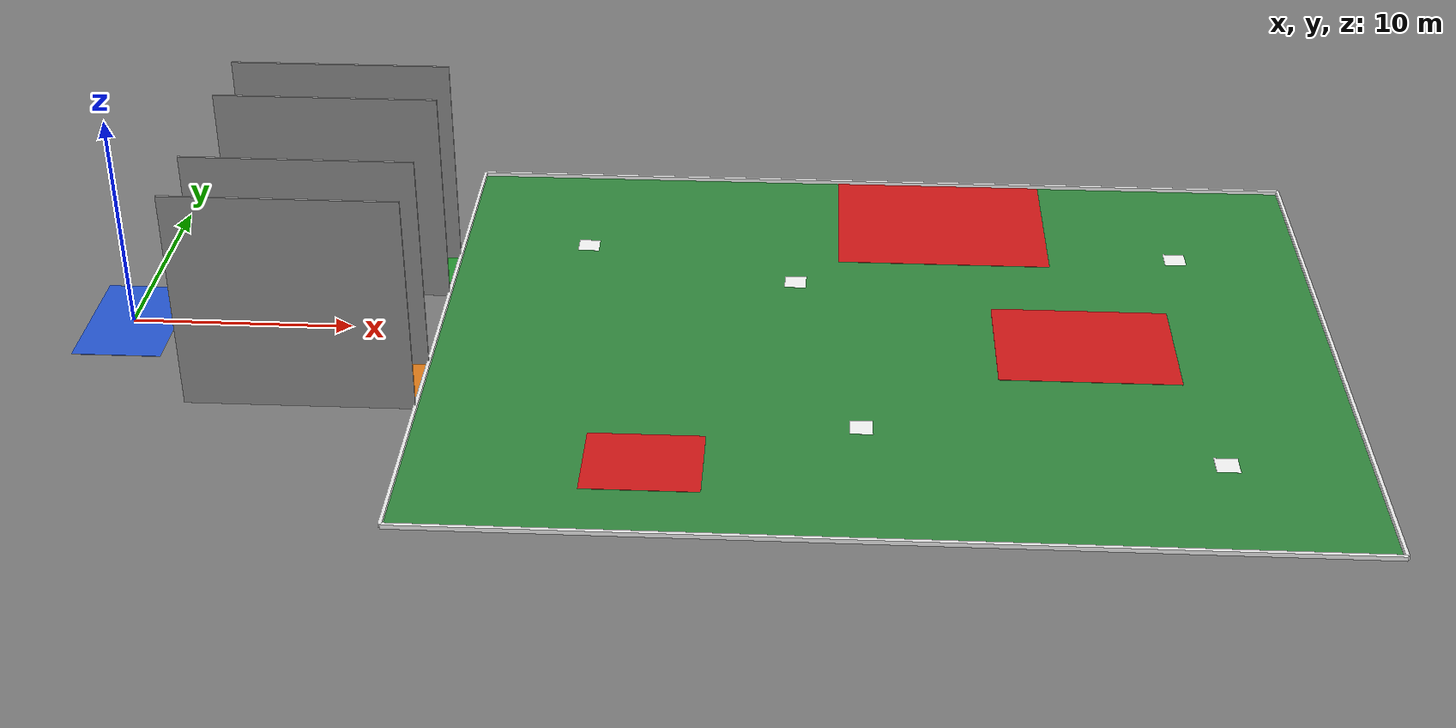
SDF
<?xml version="1.0" ?>
<sdf version="1.9">
  <world name="mission2_arena">
    <physics name="4ms" type="ignored">
      <max_step_size>0.004</max_step_size>
      <real_time_factor>1.0</real_time_factor>
    </physics>
    <plugin filename="gz-sim-physics-system" name="gz::sim::systems::Physics"/>
    <plugin filename="gz-sim-user-commands-system" name="gz::sim::systems::UserCommands"/>
    <plugin filename="gz-sim-scene-broadcaster-system" name="gz::sim::systems::SceneBroadcaster"/>
    <plugin filename="gz-sim-sensors-system" name="gz::sim::systems::Sensors">
      <render_engine>ogre2</render_engine>
    </plugin>

    <gui fullscreen="0">
      <plugin filename="MinimalScene" name="3D View">
        <gz-gui><title>3D View</title>
          <property type="bool" key="showTitleBar">false</property>
          <property type="string" key="state">docked</property>
        </gz-gui>
        <engine>ogre2</engine><scene>scene</scene>
        <ambient_light>0.5 0.5 0.5</ambient_light>
        <background_color>0.75 0.82 0.9</background_color>
        <camera_pose>25 -48 34 0 0.62 1.5708</camera_pose>
      </plugin>
      <plugin filename="GzSceneManager" name="Scene Manager"/>
      <plugin filename="InteractiveViewControl" name="Interactive view control"/>
      <plugin filename="CameraTracking" name="Camera Tracking"/>
      <plugin filename="MarkerManager" name="Marker manager"/>
      <plugin filename="SelectEntities" name="Select Entities"/>
      <plugin filename="Spawn" name="Spawn Entities"/>
      <plugin filename="EntityContextMenuPlugin" name="Entity context menu"/>
      <plugin filename="WorldControl" name="World control">
        <gz-gui>
          <property type="bool" key="showTitleBar">false</property>
          <property type="bool" key="resizable">false</property>
          <property type="double" key="height">72</property>
          <property type="double" key="z">1</property>
          <property type="string" key="state">floating</property>
          <anchors target="3D View"><line own="left" target="left"/><line own="bottom" target="bottom"/></anchors>
        </gz-gui>
        <play_pause>true</play_pause><step>true</step><start_paused>true</start_paused>
      </plugin>
      <plugin filename="WorldStats" name="World stats">
        <gz-gui>
          <property type="bool" key="showTitleBar">false</property>
          <property type="bool" key="resizable">false</property>
          <property type="double" key="height">110</property><property type="double" key="width">290</property>
          <property type="string" key="state">floating</property>
          <anchors target="3D View"><line own="right" target="right"/><line own="bottom" target="bottom"/></anchors>
        </gz-gui>
        <sim_time>true</sim_time><real_time>true</real_time><real_time_factor>true</real_time_factor>
      </plugin>
      <plugin filename="TransformControl" name="Transform control"/>
      <plugin filename="Shapes" name="Shapes"/>
      <plugin filename="ComponentInspector" name="Component inspector"/>
      <plugin filename="EntityTree" name="Entity tree"/>
    </gui>

    <light name="sun" type="directional">
      <cast_shadows>true</cast_shadows>
      <pose>0 0 10 0 0 0</pose>
      <diffuse>0.9 0.9 0.9 1</diffuse>
      <specular>0.25 0.25 0.25 1</specular>
      <direction>-0.4 0.3 -0.9</direction>
    </light>

    <model name="ground_plane">
      <static>true</static>
      <link name="link">
        <collision name="collision">
          <geometry><plane><normal>0 0 1</normal><size>200 200</size></plane></geometry>
        </collision>
        <visual name="visual">
          <geometry><plane><normal>0 0 1</normal><size>200 200</size></plane></geometry>
          <material>
            <ambient>0.4 0.4 0.4 1</ambient>
            <diffuse>0.5 0.5 0.5 1</diffuse>
          </material>
        </visual>
      </link>
    </model>

    <model name="takeoff_landing_zone">
      <static>true</static>
      <pose>0 0 0.02 0 0 0</pose>
      <link name="link">
        <visual name="v">
          <geometry><box><size>4 6 0.02</size></box></geometry>
          <material>
            <ambient>0.15 0.35 0.85 1</ambient>
            <diffuse>0.15 0.35 0.85 1</diffuse>
            <specular>0.1 0.1 0.1 1</specular>
          </material>
        </visual>
      </link>
    </model>

    <model name="lane_forward_green">
      <static>true</static>
      <pose>9 4.75 0.011 0 0 0</pose>
      <link name="link">
        <visual name="v">
          <geometry><box><size>10 3.5 0.02</size></box></geometry>
          <material>
            <ambient>0.15 0.6 0.2 1</ambient>
            <diffuse>0.15 0.6 0.2 1</diffuse>
            <specular>0.1 0.1 0.1 1</specular>
          </material>
        </visual>
      </link>
    </model>

    <model name="lane_return_orange">
      <static>true</static>
      <pose>9 -4.75 0.011 0 0 0</pose>
      <link name="link">
        <visual name="v">
          <geometry><box><size>10 3.5 0.02</size></box></geometry>
          <material>
            <ambient>0.9 0.5 0.1 1</ambient>
            <diffuse>0.9 0.5 0.1 1</diffuse>
            <specular>0.1 0.1 0.1 1</specular>
          </material>
        </visual>
      </link>
    </model>

    <model name="forward_outer_wall">
      <static>true</static>
      <pose>9 6.5 5.0 0 0 0</pose>
      <link name="link">
        <collision name="c">
          <geometry><box><size>10 0.1 10.0</size></box></geometry>
        </collision>
        <visual name="v">
          <geometry><box><size>10 0.1 10.0</size></box></geometry>
          <material>
            <ambient>0.55 0.55 0.55 1</ambient>
            <diffuse>0.55 0.55 0.55 1</diffuse>
          </material>
        </visual>
      </link>
    </model>

    <model name="forward_inner_wall">
      <static>true</static>
      <pose>9 3.0 5.0 0 0 0</pose>
      <link name="link">
        <collision name="c">
          <geometry><box><size>10 0.1 10.0</size></box></geometry>
        </collision>
        <visual name="v">
          <geometry><box><size>10 0.1 10.0</size></box></geometry>
          <material>
            <ambient>0.55 0.55 0.55 1</ambient>
            <diffuse>0.55 0.55 0.55 1</diffuse>
          </material>
        </visual>
      </link>
    </model>

    <model name="return_inner_wall">
      <static>true</static>
      <pose>9 -3.0 5.0 0 0 0</pose>
      <link name="link">
        <collision name="c">
          <geometry><box><size>10 0.1 10.0</size></box></geometry>
        </collision>
        <visual name="v">
          <geometry><box><size>10 0.1 10.0</size></box></geometry>
          <material>
            <ambient>0.55 0.55 0.55 1</ambient>
            <diffuse>0.55 0.55 0.55 1</diffuse>
          </material>
        </visual>
      </link>
    </model>

    <model name="return_outer_wall">
      <static>true</static>
      <pose>9 -6.5 5.0 0 0 0</pose>
      <link name="link">
        <collision name="c">
          <geometry><box><size>10 0.1 10.0</size></box></geometry>
        </collision>
        <visual name="v">
          <geometry><box><size>10 0.1 10.0</size></box></geometry>
          <material>
            <ambient>0.55 0.55 0.55 1</ambient>
            <diffuse>0.55 0.55 0.55 1</diffuse>
          </material>
        </visual>
      </link>
    </model>

    <model name="obstacle_1">
      <static>true</static>
      <pose>7.0 -4.0 1.0 0 0 0</pose>
      <link name="link">
        <collision name="c">
          <geometry><box><size>0.3 0.3 2.0</size></box></geometry>
        </collision>
        <visual name="v">
          <geometry><box><size>0.3 0.3 2.0</size></box></geometry>
          <material>
            <ambient>0.05 0.05 0.05 1</ambient>
            <diffuse>0.05 0.05 0.05 1</diffuse>
          </material>
        </visual>
      </link>
    </model>

    <model name="obstacle_2">
      <static>true</static>
      <pose>9.5 -5.8 1.0 0 0 0</pose>
      <link name="link">
        <collision name="c">
          <geometry><box><size>0.3 0.3 2.0</size></box></geometry>
        </collision>
        <visual name="v">
          <geometry><box><size>0.3 0.3 2.0</size></box></geometry>
          <material>
            <ambient>0.05 0.05 0.05 1</ambient>
            <diffuse>0.05 0.05 0.05 1</diffuse>
          </material>
        </visual>
      </link>
    </model>

    <model name="obstacle_3">
      <static>true</static>
      <pose>11.5 -4.8 1.25 0 0 0</pose>
      <link name="link">
        <collision name="c">
          <geometry><box><size>0.4 0.4 2.5</size></box></geometry>
        </collision>
        <visual name="v">
          <geometry><box><size>0.4 0.4 2.5</size></box></geometry>
          <material>
            <ambient>0.05 0.05 0.05 1</ambient>
            <diffuse>0.05 0.05 0.05 1</diffuse>
          </material>
        </visual>
      </link>
    </model>

    <model name="arena_floor">
      <static>true</static>
      <pose>34 0 0.008 0 0 0</pose>
      <link name="link">
        <visual name="v">
          <geometry><box><size>40 30 0.01</size></box></geometry>
          <material>
            <ambient>0.2 0.55 0.25 1</ambient>
            <diffuse>0.2 0.55 0.25 1</diffuse>
            <specular>0.1 0.1 0.1 1</specular>
          </material>
        </visual>
      </link>
    </model>

    <model name="arena_bnd_w">
      <static>true</static>
      <pose>14 0 0.1 0 0 0</pose>
      <link name="link">
        <visual name="v">
          <geometry><box><size>0.15 30 0.2</size></box></geometry>
          <material>
            <ambient>0.95 0.95 0.95 1</ambient>
            <diffuse>0.95 0.95 0.95 1</diffuse>
            <specular>0.1 0.1 0.1 1</specular>
          </material>
        </visual>
      </link>
    </model>

    <model name="arena_bnd_e">
      <static>true</static>
      <pose>54 0 0.1 0 0 0</pose>
      <link name="link">
        <visual name="v">
          <geometry><box><size>0.15 30 0.2</size></box></geometry>
          <material>
            <ambient>0.95 0.95 0.95 1</ambient>
            <diffuse>0.95 0.95 0.95 1</diffuse>
            <specular>0.1 0.1 0.1 1</specular>
          </material>
        </visual>
      </link>
    </model>

    <model name="arena_bnd_n">
      <static>true</static>
      <pose>34 15 0.1 0 0 0</pose>
      <link name="link">
        <visual name="v">
          <geometry><box><size>40 0.15 0.2</size></box></geometry>
          <material>
            <ambient>0.95 0.95 0.95 1</ambient>
            <diffuse>0.95 0.95 0.95 1</diffuse>
            <specular>0.1 0.1 0.1 1</specular>
          </material>
        </visual>
      </link>
    </model>

    <model name="arena_bnd_s">
      <static>true</static>
      <pose>34 -15 0.1 0 0 0</pose>
      <link name="link">
        <visual name="v">
          <geometry><box><size>40 0.15 0.2</size></box></geometry>
          <material>
            <ambient>0.95 0.95 0.95 1</ambient>
            <diffuse>0.95 0.95 0.95 1</diffuse>
            <specular>0.1 0.1 0.1 1</specular>
          </material>
        </visual>
      </link>
    </model>

    <model name="red_zone_main">
      <static>true</static>
      <pose>43 0 0.02 0 0 0</pose>
      <link name="link">
        <visual name="v">
          <geometry><box><size>8 6 0.02</size></box></geometry>
          <material>
            <ambient>0.85 0.1 0.1 1</ambient>
            <diffuse>0.85 0.1 0.1 1</diffuse>
            <specular>0.1 0.1 0.1 1</specular>
          </material>
        </visual>
      </link>
    </model>

    <model name="red_zone_small">
      <static>true</static>
      <pose>24 -10 0.02 0 0 0</pose>
      <link name="link">
        <visual name="v">
          <geometry><box><size>5 4 0.02</size></box></geometry>
          <material>
            <ambient>0.85 0.1 0.1 1</ambient>
            <diffuse>0.85 0.1 0.1 1</diffuse>
            <specular>0.1 0.1 0.1 1</specular>
          </material>
        </visual>
      </link>
    </model>

    <model name="red_zone_large">
      <static>true</static>
      <pose>37 11 0.02 0 0 0</pose>
      <link name="link">
        <visual name="v">
          <geometry><box><size>10 8 0.02</size></box></geometry>
          <material>
            <ambient>0.85 0.1 0.1 1</ambient>
            <diffuse>0.85 0.1 0.1 1</diffuse>
            <specular>0.1 0.1 0.1 1</specular>
          </material>
        </visual>
      </link>
    </model>

    <model name="qr_reference">
      <static>true</static>
      <pose>2.5 0 0.001 0 0 0</pose>
      <link name="link">
        <visual name="visual">
          <cast_shadows>false</cast_shadows>
          <geometry><box><size>1.0 1.0 0.002</size></box></geometry>
          <material>
            <ambient>1 1 1 1</ambient>
            <diffuse>1 1 1 1</diffuse>
            <specular>0 0 0 1</specular>
            <pbr>
              <metal>
                <albedo_map>/home/jaya9899/ros2_ws/src/skyscan_arena/materials/textures/qr_ref_target_A.png</albedo_map>
                <metalness>0</metalness>
                <roughness>1</roughness>
              </metal>
            </pbr>
          </material>
        </visual>
      </link>
    </model>

    <model name="qr_target_A">
      <static>true</static>
      <pose>30 5 0.016 0 0 0</pose>
      <link name="link">
        <visual name="visual">
          <cast_shadows>false</cast_shadows>
          <geometry><box><size>1.0 1.0 0.002</size></box></geometry>
          <material>
            <ambient>1 1 1 1</ambient>
            <diffuse>1 1 1 1</diffuse>
            <specular>0 0 0 1</specular>
            <pbr>
              <metal>
                <albedo_map>/home/jaya9899/ros2_ws/src/skyscan_arena/materials/textures/qr_target_A.png</albedo_map>
                <metalness>0</metalness>
                <roughness>1</roughness>
              </metal>
            </pbr>
          </material>
        </visual>
      </link>
    </model>

    <model name="qr_target_B">
      <static>true</static>
      <pose>20 8 0.016 0 0 0</pose>
      <link name="link">
        <visual name="visual">
          <cast_shadows>false</cast_shadows>
          <geometry><box><size>1.0 1.0 0.002</size></box></geometry>
          <material>
            <ambient>1 1 1 1</ambient>
            <diffuse>1 1 1 1</diffuse>
            <specular>0 0 0 1</specular>
            <pbr>
              <metal>
                <albedo_map>/home/jaya9899/ros2_ws/src/skyscan_arena/materials/textures/qr_target_b.png</albedo_map>
                <metalness>0</metalness>
                <roughness>1</roughness>
              </metal>
            </pbr>
          </material>
        </visual>
      </link>
    </model>

    <model name="qr_target_C">
      <static>true</static>
      <pose>22 -9 0.016 0 0 0</pose>
      <link name="link">
        <visual name="visual">
          <cast_shadows>false</cast_shadows>
          <geometry><box><size>1.0 1.0 0.002</size></box></geometry>
          <material>
            <ambient>1 1 1 1</ambient>
            <diffuse>1 1 1 1</diffuse>
            <specular>0 0 0 1</specular>
            <pbr>
              <metal>
                <albedo_map>/home/jaya9899/ros2_ws/src/skyscan_arena/materials/textures/qr_target_c.png</albedo_map>
                <metalness>0</metalness>
                <roughness>1</roughness>
              </metal>
            </pbr>
          </material>
        </visual>
      </link>
    </model>

    <model name="qr_target_D">
      <static>true</static>
      <pose>33 -7 0.016 0 0 0</pose>
      <link name="link">
        <visual name="visual">
          <cast_shadows>false</cast_shadows>
          <geometry><box><size>1.0 1.0 0.002</size></box></geometry>
          <material>
            <ambient>1 1 1 1</ambient>
            <diffuse>1 1 1 1</diffuse>
            <specular>0 0 0 1</specular>
            <pbr>
              <metal>
                <albedo_map>/home/jaya9899/ros2_ws/src/skyscan_arena/materials/textures/qr_target_d.png</albedo_map>
                <metalness>0</metalness>
                <roughness>1</roughness>
              </metal>
            </pbr>
          </material>
        </visual>
      </link>
    </model>

    <model name="qr_target_E">
      <static>true</static>
      <pose>48 8 0.016 0 0 0</pose>
      <link name="link">
        <visual name="visual">
          <cast_shadows>false</cast_shadows>
          <geometry><box><size>1.0 1.0 0.002</size></box></geometry>
          <material>
            <ambient>1 1 1 1</ambient>
            <diffuse>1 1 1 1</diffuse>
            <specular>0 0 0 1</specular>
            <pbr>
              <metal>
                <albedo_map>/home/jaya9899/ros2_ws/src/skyscan_arena/materials/textures/qr_target_e.png</albedo_map>
                <metalness>0</metalness>
                <roughness>1</roughness>
              </metal>
            </pbr>
          </material>
        </visual>
      </link>
    </model>

    <model name="qr_target_F">
      <static>true</static>
      <pose>48 -9 0.016 0 0 0</pose>
      <link name="link">
        <visual name="visual">
          <cast_shadows>false</cast_shadows>
          <geometry><box><size>1.0 1.0 0.002</size></box></geometry>
          <material>
            <ambient>1 1 1 1</ambient>
            <diffuse>1 1 1 1</diffuse>
            <specular>0 0 0 1</specular>
            <pbr>
              <metal>
                <albedo_map>/home/jaya9899/ros2_ws/src/skyscan_arena/materials/textures/qr_target_f.png</albedo_map>
                <metalness>0</metalness>
                <roughness>1</roughness>
              </metal>
            </pbr>
          </material>
        </visual>
      </link>
    </model>

  </world>
</sdf>
